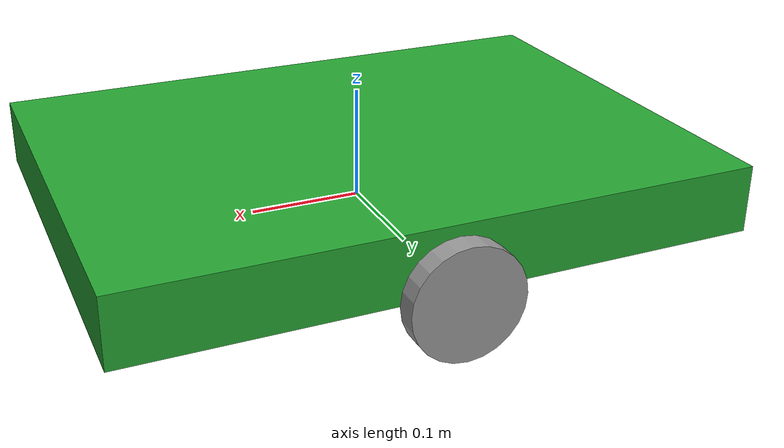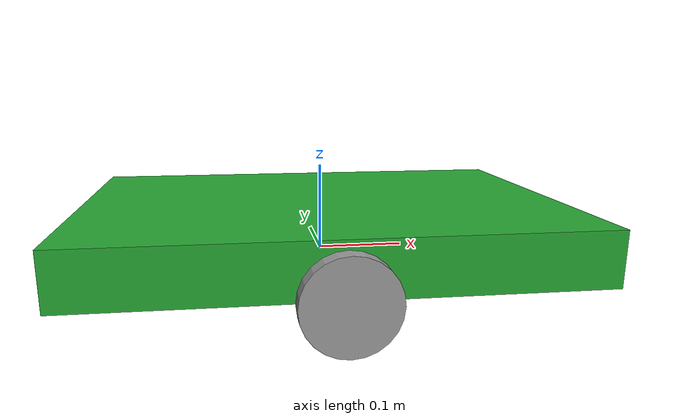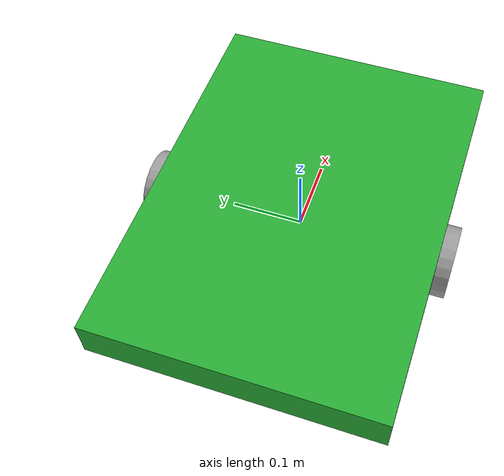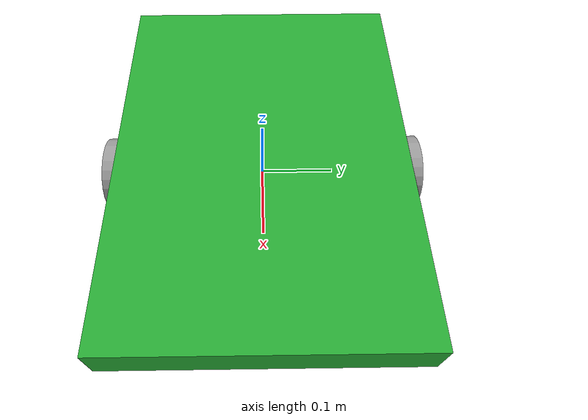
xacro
<?xml version="1.0"?>
<robot xmlns:xacro="http://www.ros.org/wiki/xacro">
  <xacro:property name="base_length" value="0.55" />
  <xacro:property name="base_width" value="0.4" />
  <xacro:property name="base_height" value="0.06" />
  <xacro:property name="wheel_radius" value="0.05" />
  <xacro:property name="wheel_length" value="0.02" />
  <xacro:macro name="wheel_link" params="prefix">
    <link name="${prefix}_wheel_link">
       <visual>
        <geometry>
          <cylinder radius="${wheel_radius}" length="${wheel_length}" />
        </geometry>
        <origin xyz="0 0 0" rpy="${pi / 2.0} 0 0" /><material name="gray" />
      </visual>
      <collision>
        <geometry>
          <sphere radius="${wheel_radius}"/>
        </geometry>
        <origin xyz="0 0 0" rpy="0 0 0" /><material name="gray" />
      </collision>
      <xacro:cylinder_inertia m="1.0" r="${wheel_radius}" l="${wheel_length}"
        o_xyz="0 0 0" o_rpy="${pi / 2.0} 0 0" />
    </link>
  </xacro:macro>
  <link name="base_link">
    <visual>
      <geometry>
        <box size="${base_length} ${base_width} ${base_height}" />
      </geometry>
      <origin xyz="0 0 ${base_height / 2.0}" rpy="0 0 0" />
      <material name="green" />
    </visual>
    <collision>
      <geometry>
        <box size="${base_length} ${base_width} ${base_height}" />
      </geometry>
      <origin xyz="0 0 ${base_height / 2.0}" rpy="0 0 0" />
    </collision>
    <xacro:box_inertia m="5.0" x="${base_length}" y="${base_width}" z="${base_height}"
      o_xyz="0 0 ${base_height / 2.0}" o_rpy="0 0 0" />
  </link>
  <xacro:wheel_link prefix="right" />
  <joint name="base_right_wheel_joint" type="continuous">
    <parent link="base_link" />
    <child link="right_wheel_link" />
    <origin xyz="0 ${-(base_width + wheel_length) / 2.0} 0" rpy="0 0 0" />
    <axis xyz="0 1 0" rpy="0 0 0"/>
  </joint>
  <xacro:wheel_link prefix="left" />
  <joint name="base_left_wheel_joint" type="continuous">
    <parent link="base_link" />
    <child link="left_wheel_link" />
    <origin xyz="0 ${(base_width + wheel_length) / 2.0} 0.0" rpy="0 0 0" />
    <axis xyz="0 -1 0" rpy="0 0 0"/>
  </joint>
  <link name="caster_wheel_link_front">
    <visual>
      <geometry>
        <sphere radius="${wheel_radius / 2.0}" />
      </geometry>
      <origin xyz="0 0 0" rpy="0 0 0" />
      <material name="gray" />
    </visual>
    <collision>
      <geometry>
        <sphere radius="${wheel_radius / 2.0}" />
      </geometry>
      <origin xyz="0 0 0" rpy="0 0 0" />
    </collision>
    <xacro:sphere_inertia m="0.5" r="${wheel_radius / 2.0}" o_xyz="0 0 0" o_rpy="0 0 0" />
  </link>
  <joint name="base_caster_wheel_joint" type="fixed">
    <parent link="base_link" />
    <child link="caster_wheel_link_front" />
    <origin xyz="${base_length / 3.0} 0 ${-wheel_radius / 2.0}" rpy="0 0 0" />
  </joint>

  <link name="caster_wheel_link_back">
    <visual>
      <geometry>
        <sphere radius="${wheel_radius / 2.0}" />
      </geometry>
      <origin xyz="0 0 0" rpy="0 0 0" />
      <material name="gray" />
    </visual>
    <collision>
      <geometry>
        <sphere radius="${wheel_radius / 2.0}" />
      </geometry>
      <origin xyz="0 0 0" rpy="0 0 0" />
    </collision>
    <xacro:sphere_inertia m="0.5" r="${wheel_radius / 2.0}" o_xyz="0 0 0" o_rpy="0 0 0" />
  </link>
  <joint name="base_caster_wheel_joint2" type="fixed">
    <parent link="base_link" />
    <child link="caster_wheel_link_back" />
    <origin xyz="${-base_length / 3.0} 0 ${-wheel_radius / 2.0}" rpy="0 0 0" />
  </joint>

  <link name="base_footprint">
  </link>

  <joint name="base_joint" type="fixed">
    <parent link="base_link" />
    <child link="base_footprint" />
    <origin xyz="0 0 0" rpy="0 0 0" />
  </joint>

</robot>
